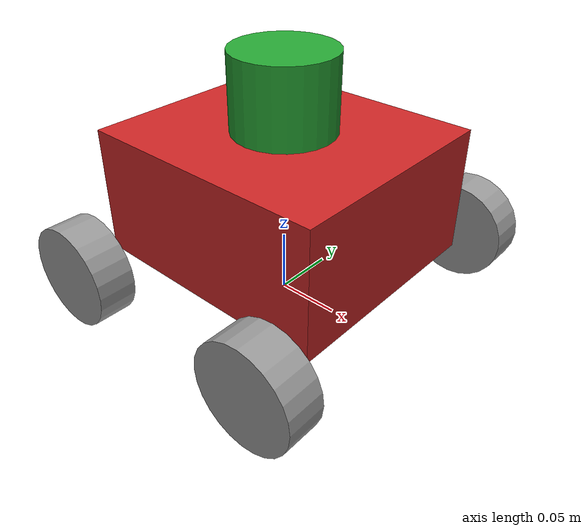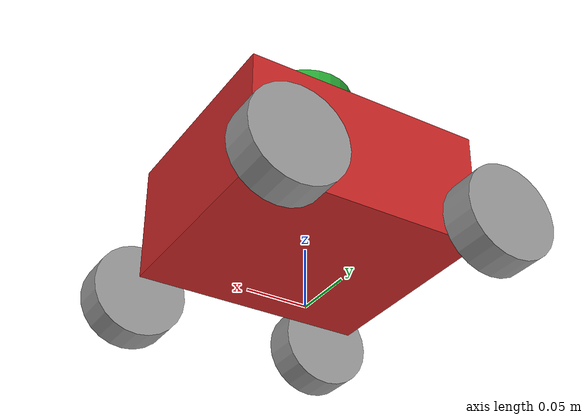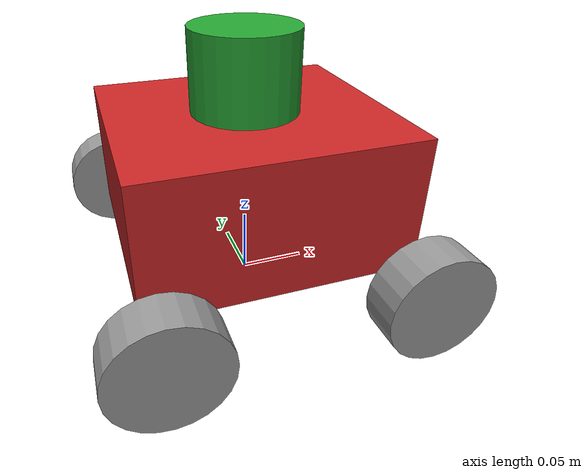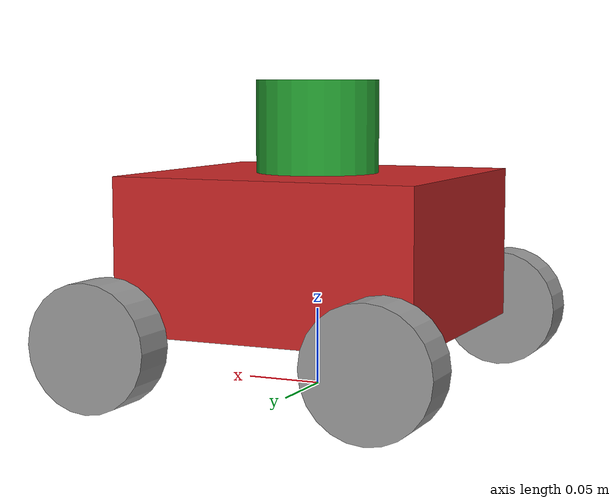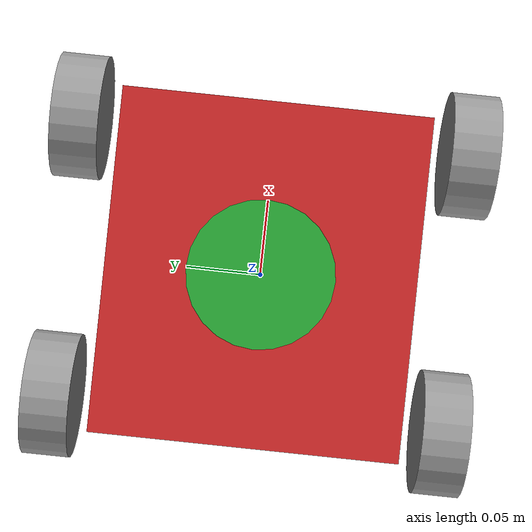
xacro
<?xml version="1.0"?>
<robot xmlns:xacro="http://www.ros.org/wiki/xacro">

    <xacro:property name="base_length" value="0.20"/>
    <xacro:property name="base_width" value="0.18"/>
    <xacro:property name="base_height" value="0.10"/>

    <xacro:property name="wheel_radius" value="0.04"/>
    <xacro:property name="wheel_width" value="0.03"/>

    <xacro:property name="wheel_track" value="0.25"/>

    <xacro:property name="wheel_base" value="0.18"/>

    <xacro:property name="lidar_radius" value="0.04"/>
    <xacro:property name="lidar_height" value="0.06"/>

    <link name="base_footprint"/>

    <link name="base_link">

        <visual>
            <origin xyz="0 0 ${base_height/2}" rpy="0 0 0"/>
            <geometry>
                <box size="${base_length} ${base_width} ${base_height}"/>
            </geometry>
            <material name="red"/>
        </visual>

        <collision>
            <origin xyz="0 0 ${base_height/2}" rpy="0 0 0"/>
            <geometry>
                <box size="${base_length} ${base_width} ${base_height}"/>
            </geometry>
        </collision>

        <xacro:box_inertial
            m="6.0"
            x="${base_length}"
            y="${base_width}"
            z="${base_height}"
            o_xyz="0 0 ${base_height/2}"
            o_rpy="0 0 0"/>

    </link>

    <joint name="base_joint" type="fixed">
        <parent link="base_footprint"/>
        <child link="base_link"/>
        <origin xyz="0 0 ${wheel_radius}" rpy="0 0 0"/>
    </joint>

    <xacro:macro name="wheel" params="name x y">

        <link name="${name}_wheel_link">

            <visual>
                <origin xyz="0 0 0" rpy="${pi/2} 0 0"/>
                <geometry>
                    <cylinder radius="${wheel_radius}"
                              length="${wheel_width}"/>
                </geometry>
                <material name="gray"/>
            </visual>

            <collision>
                <origin xyz="0 0 0" rpy="${pi/2} 0 0"/>
                <geometry>
                    <cylinder radius="${wheel_radius}"
                              length="${wheel_width}"/>
                </geometry>
            </collision>

            <xacro:cylinder_inertial
                m="0.5"
                r="${wheel_radius}"
                l="${wheel_width}"
                o_xyz="0 0 0"
                o_rpy="${pi/2} 0 0"/>

        </link>

        <joint name="${name}_wheel_joint"
               type="continuous">

            <parent link="base_link"/>
            <child link="${name}_wheel_link"/>

            <origin xyz="${x} ${y} 0"/>

            <axis xyz="0 1 0"/>

        </joint>

    </xacro:macro>

    <xacro:wheel
        name="front_left"
        x="${wheel_base/2}"
        y="${wheel_track/2}"/>

    <xacro:wheel
        name="front_right"
        x="${wheel_base/2}"
        y="${-wheel_track/2}"/>

    <xacro:wheel
        name="rear_left"
        x="${-wheel_base/2}"
        y="${wheel_track/2}"/>

    <xacro:wheel
        name="rear_right"
        x="${-wheel_base/2}"
        y="${-wheel_track/2}"/>

    <link name="laser">

        <visual>
            <geometry>
                <cylinder radius="${lidar_radius}"
                          length="${lidar_height}"/>
            </geometry>

            <material name="green"/>

        </visual>

        <collision>
            <geometry>
                <cylinder radius="${lidar_radius}"
                          length="${lidar_height}"/>
            </geometry>
        </collision>

        <xacro:cylinder_inertial
            m="0.30"
            r="${lidar_radius}"
            l="${lidar_height}"
            o_xyz="0 0 0"
            o_rpy="0 0 0"/>

    </link>

    <joint name="lidar_joint"
           type="fixed">

        <parent link="base_link"/>
        <child link="laser"/>

        <origin xyz="0 0 ${base_height + lidar_height/2}"
                rpy="0 0 0"/>

    </joint>

</robot>
